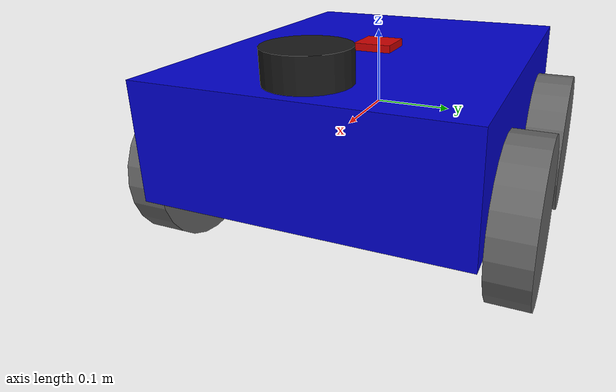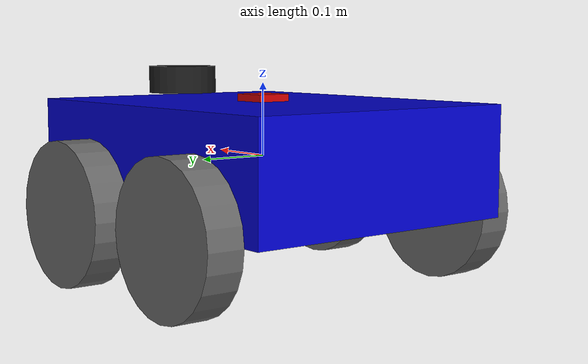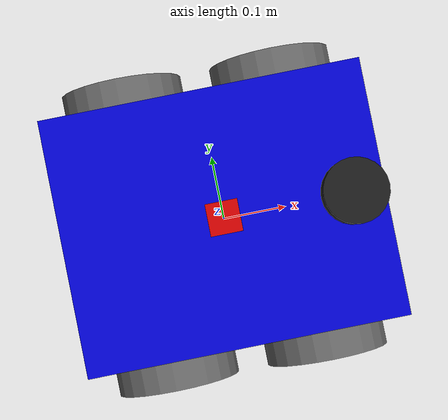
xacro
<?xml version="1.0"?>
<robot name="amr_robot" xmlns:xacro="http://www.ros.org/wiki/xacro">

  <!-- ===== 로봇 기본 파라미터 ===== -->
  <!-- 로봇의 크기, 바퀴, 반지름 등을 선언 -->
  <xacro:property name="base_width"   value="0.4"/>
  <xacro:property name="base_length"  value="0.5"/>
  <xacro:property name="base_height"  value="0.15"/>
  <xacro:property name="wheel_radius" value="0.1"/>
  <xacro:property name="wheel_width"  value="0.05"/>

  <!-- ===== 바퀴 매크로 (4번 재사용) ===== -->
  <xacro:macro name="wheel" params="name x_pos y_pos">
    <link name="${name}">
      <visual>
        <geometry>
          <cylinder radius="${wheel_radius}" length="${wheel_width}"/>
        </geometry>
        <material name="gray">
          <color rgba="0.4 0.4 0.4 1.0"/>
        </material>
      </visual>
        <!-- 물리 엔진에서 충돌을 감지하는 영역 (collision) -->
      <collision>
      <!-- 충돌 계산 범위 -->
        <geometry>
        <!-- 외형과 동일한 크기의 원기둥 -->
          <cylinder radius="${wheel_radius}" length="${wheel_width}"/>
        </geometry>
      </collision>
      <inertial>
      <!-- 물리적 무게중심 및 관성 -->
        <mass value="1.0"/><!-- 바퀴 하나의 질량: 1kg -->
        <!-- 관성 모멘트 텐서 (회전에 저항하는 성질) -->
        <inertia ixx="0.01" ixy="0.0" ixz="0.0"
                 iyy="0.01" iyz="0.0" izz="0.01"/>
      </inertial>
    </link>
     <!-- 바퀴와 몸체를 연결하는 관절 (joint) 정의 -->
    <joint name="${name}_joint" type="continuous"><!-- continuous: 무한 회전 가능한 관절 -->
      <parent link="base_link"/> <!--관절의 기준이 되는 부모 링크(로봇 몸체)-->
      <child  link="${name}"/> <!--부모에 의해 움직임이 결정되는 자식 링크(바퀴)-->
      <!-- 부모 링크 기준 관절이 생성되는 위치 및 회전 자세 -->
      <origin xyz="${x_pos} ${y_pos} ${-base_height/2}"
              rpy="${pi/2} 0 0"/> <!--위치 및 자세 설정, 부모 링크의 중심을 기준으로 바퀴가 붙을 좌표-->
                  <!--
                    xyz: x, y 위치는 매크로 인자로 받고, z 높이는 몸체 바닥면에 맞춤 (-base_height/2)
                    rpy: Roll(x축 회전)을 90도(pi/2) 꺾어 원기둥을 세우지 않고 눕혀 굴러가게 함.
                    -->
              <!---base_height/2: 몸체 박스의 바닥면 높이에 바퀴 중심을 맞추기 위함-->
      <axis xyz="0 0 -1"/> <!-- 관절이 회전하는 축 (z축 방향 회전) -->
    </joint>
  </xacro:macro>

  <!-- ===== base_link : 로봇 몸체 ===== -->
  <link name="base_link">
    <visual>
      <geometry>
        <box size="${base_length} ${base_width} ${base_height}"/>
      </geometry>
      <material name="blue">
        <color rgba="0.0 0.0 0.8 1.0"/>
      </material>
    </visual>
    <collision>
      <geometry>
        <box size="${base_length} ${base_width} ${base_height}"/>
      </geometry>
    </collision>
    <inertial>
      <mass value="15.0"/>
      <inertia ixx="0.2" ixy="0.0" ixz="0.0"
               iyy="0.2" iyz="0.0" izz="0.2"/>
    </inertial>
  </link>

  <!-- ===== imu_link : IMU 센서 ===== -->
  <link name="imu_link">
    <visual>
      <geometry><box size="0.05 0.05 0.02"/></geometry>
      <material name="red"><color rgba="0.8 0.0 0.0 1.0"/></material>
    </visual>
  </link>
  <joint name="imu_joint" type="fixed"><!-- fixed: 움직이지 않고 단단히 고정된 관절 -->
    <parent link="base_link"/>
    <child  link="imu_link"/>
    <!-- 몸체 중앙의 위쪽 표면 부근에 부착 (z=0.075) -->
    <origin xyz="0.0 0.0 0.075" rpy="0 0 0"/>
  </joint>

  <!-- ===== laser_link : 2D LiDAR ===== -->
  <link name="laser_link">
    <visual>
      <geometry><cylinder radius="0.05" length="0.04"/></geometry>
      <material name="black"><color rgba="0.1 0.1 0.1 1.0"/></material>
    </visual>
  </link>
  <joint name="laser_joint" type="fixed">
    <parent link="base_link"/>
    <child  link="laser_link"/>
    <!-- 몸체의 앞쪽(x=0.2), 중심(y=0.0), 위쪽(z=0.1)에 부착하여 전방 시야 확보 -->
    <origin xyz="0.2 0.0 0.1" rpy="0 0 0"/>
  </joint>

  <!-- ===== 바퀴 4개 (앞왼, 앞오, 뒤왼, 뒤오) ===== -->
  <xacro:wheel name="front_left_wheel"
    x_pos=" ${base_length/4}"
    y_pos=" ${base_width/2 + wheel_width/2}"/>

  <xacro:wheel name="front_right_wheel"
    x_pos=" ${base_length/4}"
    y_pos="${-(base_width/2 + wheel_width/2)}"/>

  <xacro:wheel name="rear_left_wheel"
    x_pos="${-base_length/4}"
    y_pos=" ${base_width/2 + wheel_width/2}"/>

  <xacro:wheel name="rear_right_wheel"
    x_pos="${-base_length/4}"
    y_pos="${-(base_width/2 + wheel_width/2)}"/>

<!-- ===== Gazebo 플러그인 ===== -->

  <!-- Skid-Steer 구동 플러그인 -->
  <!-- 바퀴에 토크 적용, 실제 회전 + /odom 퍼블리시-->
  <gazebo>
    <plugin filename="libignition-gazebo-diff-drive-system.so"
            name="ignition::gazebo::systems::DiffDrive">
      <left_joint>front_left_wheel_joint</left_joint>
      <left_joint>rear_left_wheel_joint</left_joint>
      <right_joint>front_right_wheel_joint</right_joint>
      <right_joint>rear_right_wheel_joint</right_joint>
      <wheel_separation>0.45</wheel_separation>
      <wheel_radius>0.1</wheel_radius>
      <topic>/cmd_vel</topic>
      <odom_topic>/odom</odom_topic>
      <frame_id>odom</frame_id>
      <child_frame_id>base_link</child_frame_id>
      <odom_publish_frequency>50</odom_publish_frequency>
    </plugin>
  </gazebo>

  <!-- IMU 센서 플러그인 -->
  <!-- 시뮬레이션 물리 엔진의 가속도/각속도 읽기-->
  <!-- /imu 토픽으로 퍼블리시(100hz)-->
  <gazebo reference="imu_link">
    <sensor name="imu_sensor" type="imu">
      <always_on>true</always_on>
      <update_rate>100</update_rate>
      <topic>/imu</topic>
      <ignition_frame_id>imu_link</ignition_frame_id>
      <plugin filename="libignition-gazebo-imu-system.so"
        name="ignition::gazebo::systems::Imu"/>
      <imu>
        <!-- 선가속도 노이즈 설정 -->
        <!-- mean: 바이어스(편향) — 0이 아니면 센서가 한쪽으로 치우친 값을 출력 -->
        <!-- stddev: 가우시안 노이즈 표준편차 — 클수록 측정값이 더 많이 흔들림 -->
        <linear_acceleration>
          <x>
            <noise type="gaussian">
              <mean>0.0</mean>    <!-- 노이즈 없음: 0.0 / 노이즈 있음: 0.05 -->
              <stddev>0.0</stddev><!-- 노이즈 없음: 0.0 / 노이즈 있음: 0.01 -->
            </noise>
          </x>
          <y>
            <noise type="gaussian">
              <mean>0.0</mean>
              <stddev>0.0</stddev>
            </noise>
          </y>
        </linear_acceleration>
        <!-- 각속도 노이즈 설정 -->
        <angular_velocity>
          <z>
            <noise type="gaussian">
              <mean>0.0</mean>    <!-- 노이즈 없음: 0.0 / 노이즈 있음: 0.01 -->
              <stddev>0.0</stddev><!-- 노이즈 없음: 0.0 / 노이즈 있음: 0.005 -->
            </noise>
          </z>
        </angular_velocity>
      </imu>
    </sensor>
  </gazebo>

  <!-- 2D LiDAR 센서 플러그인 -->
  <!-- 레이캐스팅으로 주변 장애물 거리 계산-->
  <!-- /scan 토픽으로 퍼블리시(10hz)-->
  <gazebo reference="laser_link">
    <sensor name="lidar" type="gpu_lidar">
      <always_on>true</always_on>
      <update_rate>10</update_rate>
      <topic>/scan</topic>
      <ignition_frame_id>laser_link</ignition_frame_id>
      <ray>
        <scan>
          <horizontal>
            <samples>360</samples>
            <resolution>1</resolution>
            <min_angle>-3.14159</min_angle>
            <max_angle>3.14159</max_angle>
          </horizontal>
        </scan>
        <range>
          <min>0.1</min>
          <max>10.0</max>
        </range>
      </ray>
    </sensor>
  </gazebo>

</robot>
